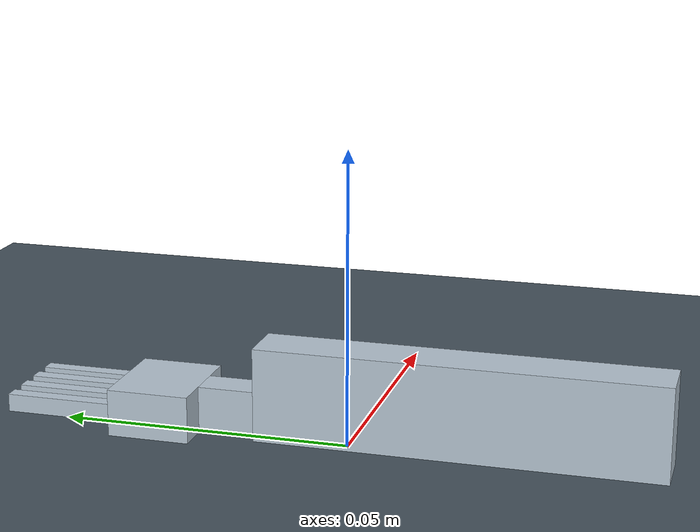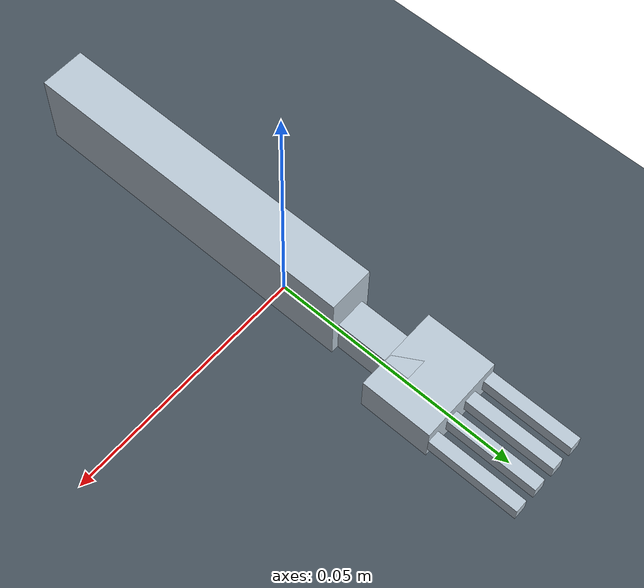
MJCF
<mujoco model="duet2_fork">
  <compiler angle="radian" autolimits="true" />
  <option timestep=".005" integrator="implicitfast" cone="elliptic" iterations="30" />
  <asset>
    <material name="base_motor_holder_so101_v1_material" rgba="1 0.82 0.12 1" />
    <material name="base_so101_v2_material" rgba="1 0.82 0.12 1" />
    <material name="sts3215_03a_v1_material" rgba="0.1 0.1 0.1 1" />
    <material name="waveshare_mounting_plate_so101_v2_material" rgba="1 0.82 0.12 1" />
    <material name="motor_holder_so101_base_v1_material" rgba="1 0.82 0.12 1" />
    <material name="rotation_pitch_so101_v1_material" rgba="1 0.82 0.12 1" />
    <material name="upper_arm_so101_v1_material" rgba="1 0.82 0.12 1" />
    <material name="under_arm_so101_v1_material" rgba="1 0.82 0.12 1" />
    <material name="motor_holder_so101_wrist_v1_material" rgba="1 0.82 0.12 1" />
    <material name="sts3215_03a_no_horn_v1_material" rgba="0.1 0.1 0.1 1.0" />
    <material name="wrist_roll_pitch_so101_v2_material" rgba="1 0.82 0.12 1" />
    <material name="wrist_roll_follower_so101_v1_material" rgba="1 0.82 0.12 1" />
    <material name="moving_jaw_so101_v1_material" rgba="1 0.82 0.12 1" />
    <texture name="sky" type="skybox" builtin="gradient" rgb1="0.15 0.21 0.29" rgb2="0.04 0.07 0.12" width="512" height="3072" />
    <texture name="floor_tex" type="2d" builtin="checker" width="512" height="512" rgb1="0.18 0.22 0.28" rgb2="0.20 0.24 0.30" />
    <material name="floor_mat" texture="floor_tex" texrepeat="8 8" reflectance="0.05" />
    <material name="table_mat" rgba=".69 .53 .37 1" specular="0.25" shininess="0.3" />
    <material name="edge_mat" rgba="0.07 0.12 0.17 1" specular="0.45" />
    <material name="tube_mat" rgba="0.71 0.88 0.94 0.78" specular="0.6" shininess="0.8" />
    <material name="ceramic" rgba=".95 .95 .90 1" specular=".3" shininess=".65" />
    <material name="plate_blue" rgba=".33 .51 .76 1" specular=".35" shininess=".65" />
    <material name="plate_gold" rgba=".81 .56 .28 1" specular=".35" shininess=".65" />
    <material name="mug_teal" rgba=".06 .53 .49 1" specular=".4" shininess=".65" />
    <material name="clear_glass" rgba=".66 .87 .92 .30" specular=".75" shininess=".65" />
    <material name="glass_rim" rgba=".62 .84 .89 .8" specular=".6" shininess=".65" />
    <material name="amber_glass" rgba=".55 .32 .13 .78" specular=".6" shininess=".65" />
    <material name="bottle_label" rgba=".96 .91 .72 1" specular=".1" shininess=".65" />
    <material name="steel" rgba=".72 .78 .83 1" specular=".85" shininess=".65" />
    <material name="drawer_wood" rgba=".37 .21 .12 1" specular=".2" shininess=".65" />
    <material name="drawer_lining" rgba=".20 .28 .27 1" specular=".1" shininess=".65" />
  </asset>
  <worldbody>
    <light pos="0 -.3 2" dir="0 0 -1" />
    <geom name="inspection_floor" type="plane" size=".4 .4 .05" pos="0 0 0.0" rgba=".27 .32 .36 1" />
    <body name="fork" pos="0 0 0.001" euler="0 0 0">
      <freejoint name="fork_free" />
      <inertial pos="0 0 0.008" mass="0.012" diaginertia="1.2356e-05 5.45e-07 1.2389e-05" />
      <geom name="fork_handle" type="box" size="0.0045 0.034 0.008" pos="0 -0.019 0.008" mass="0" friction="0.8 0.005 0.0001" condim="4" solref=".012 1" material="steel" />
      <geom name="fork_neck" type="box" size="0.003 0.01 0.004" pos="0 0.02 0.004" mass="0" friction="0.8 0.005 0.0001" condim="4" solref=".012 1" material="steel" />
      <geom name="fork_head" type="box" size="0.0085 0.007 0.004" pos="0 0.032 0.004" mass="0" friction="0.8 0.005 0.0001" condim="4" solref=".012 1" material="steel" />
      <geom name="fork_tine_0" type="box" size="0.00125 0.011 0.0015" pos="-0.0072 0.046 0.004" mass="0" friction="0.8 0.005 0.0001" condim="4" solref=".012 1" material="steel" />
      <geom name="fork_tine_1" type="box" size="0.00125 0.011 0.0015" pos="-0.0024 0.046 0.004" mass="0" friction="0.8 0.005 0.0001" condim="4" solref=".012 1" material="steel" />
      <geom name="fork_tine_2" type="box" size="0.00125 0.011 0.0015" pos="0.0024 0.046 0.004" mass="0" friction="0.8 0.005 0.0001" condim="4" solref=".012 1" material="steel" />
      <geom name="fork_tine_3" type="box" size="0.00125 0.011 0.0015" pos="0.0072 0.046 0.004" mass="0" friction="0.8 0.005 0.0001" condim="4" solref=".012 1" material="steel" />
      <site name="fork_grasp" pos="0 0 0.008" size=".002" group="4" rgba="0 1 0 1" />
    </body>
  </worldbody>
</mujoco>
